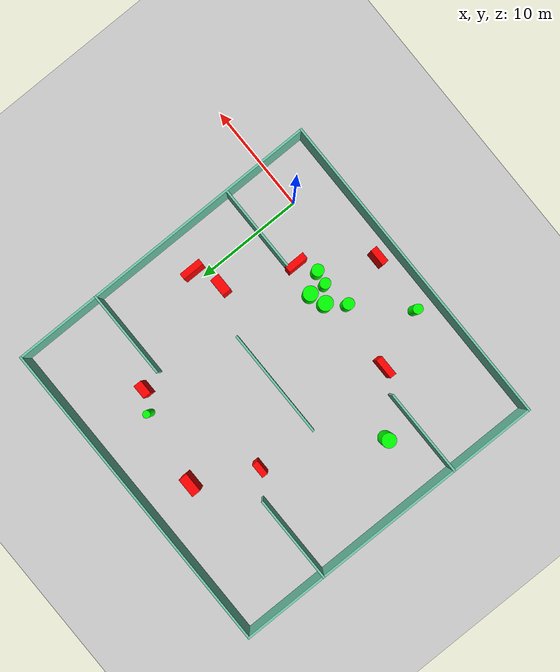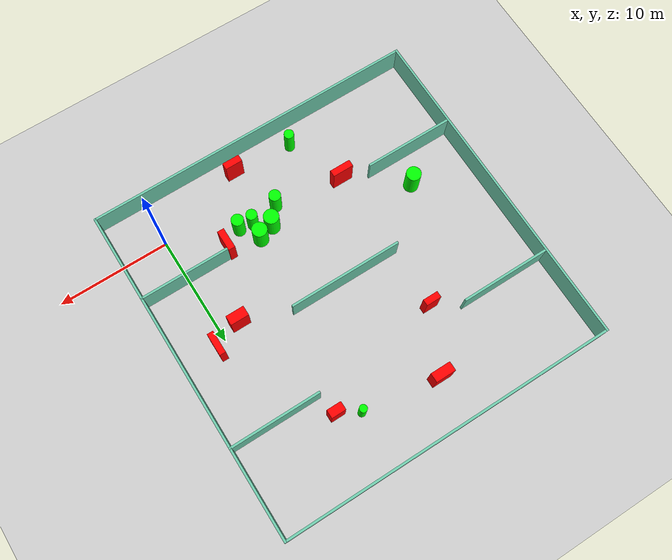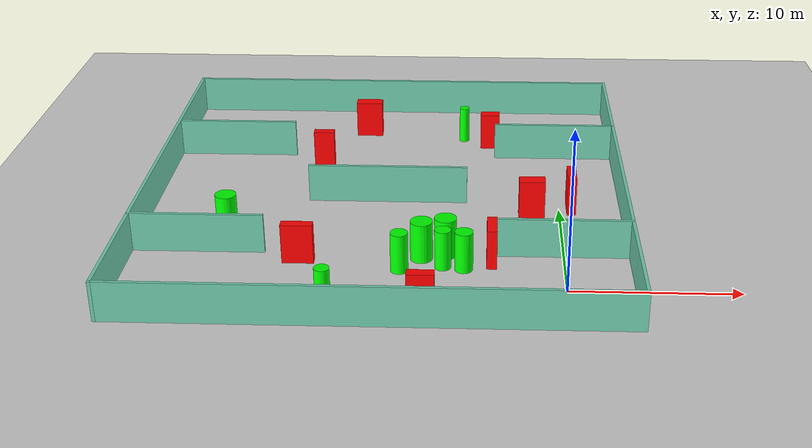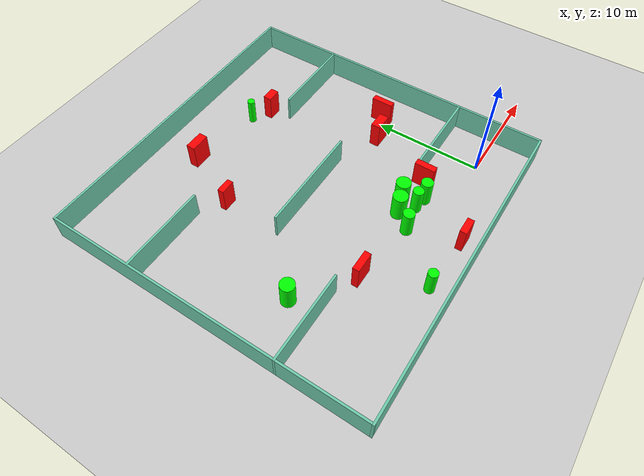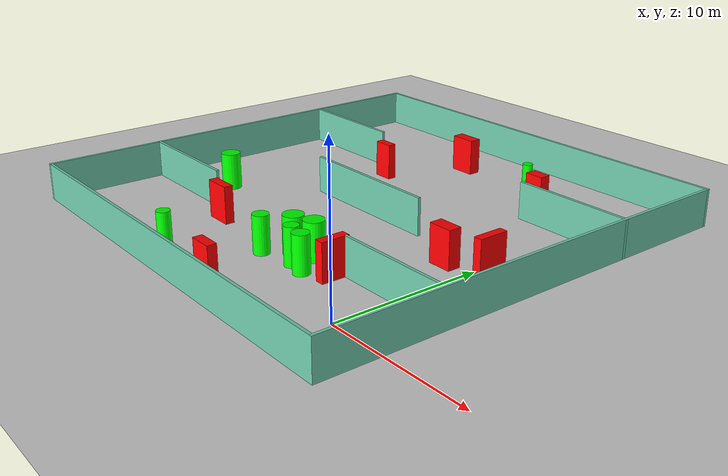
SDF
<sdf version="1.7">
 <world name="default">
  <light name="sun" type="directional">
   <pose>0 0 10 0 -0 0</pose>
   <diffuse>0.8 0.8 0.8 1</diffuse>
   <specular>0.2 0.2 0.2 1</specular>
   <attenuation>
    <range>1000</range>
    <constant>0.9</constant>
    <linear>0.01</linear>
    <quadratic>0.001</quadratic>
   </attenuation>
   <direction>-0.5 0.1 -0.9</direction>
   <spot><inner_angle>0</inner_angle><outer_angle>0</outer_angle><falloff>0</falloff></spot>
  </light>
  <model name="ground_plane">
   <static>1</static>
   <link name="link">
    <collision name="collision">
     <geometry><plane><normal>0 0 1</normal><size>100 100</size></plane></geometry>
     <surface>
      <contact><collide_bitmask>65535</collide_bitmask></contact>
      <friction><ode><mu>100</mu><mu2>50</mu2></ode></friction>
     </surface>
    </collision>
    <visual name="visual">
     <cast_shadows>0</cast_shadows>
     <geometry><plane><normal>0 0 1</normal><size>100 100</size></plane></geometry>
     <material>
      <script><uri>file://media/materials/scripts/gazebo.material</uri><name>Gazebo/Grey</name></script>
     </material>
    </visual>
   </link>
  </model>
  <gravity>0 0 -9.8</gravity>
  <magnetic_field>6e-06 2.3e-05 -4.2e-05</magnetic_field>
  <atmosphere type="adiabatic"/>
  <physics type="ode">
   <max_step_size>0.001</max_step_size>
   <real_time_factor>1</real_time_factor>
   <real_time_update_rate>1000</real_time_update_rate>
  </physics>
  <scene><ambient>0.4 0.4 0.4 1</ambient><background>0.7 0.7 0.7 1</background><shadows>1</shadows></scene>
  <spherical_coordinates>
   <surface_model>EARTH_WGS84</surface_model>
   <latitude_deg>0</latitude_deg>
   <longitude_deg>0</longitude_deg>
   <elevation>0</elevation>
   <heading_deg>0</heading_deg>
  </spherical_coordinates>
  <model name="my_base_walls">
   <link name="Wall_10">
    <collision name="Wall_10_Collision">
     <geometry><box><size>8.2 0.2 2.5</size></box></geometry>
     <pose>0 0 1.25 0 -0 0</pose>
    </collision>
    <visual name="Wall_10_Visual">
     <pose>0 0 1.25 0 -0 0</pose>
     <geometry><box><size>8.2 0.2 2.5</size></box></geometry>
     <material>
      <script><uri>file://media/materials/scripts/gazebo.material</uri><name>Gazebo/Grey</name></script>
      <ambient>0.435294 0.796078 0.67451 1</ambient>
     </material>
     <meta><layer>0</layer></meta>
    </visual>
    <pose>-11 -7 0 0 -0 0</pose>
   </link>
   <link name="Wall_12">
    <collision name="Wall_12_Collision">
     <geometry><box><size>8.2 0.2 2.5</size></box></geometry>
     <pose>0 0 1.25 0 -0 0</pose>
    </collision>
    <visual name="Wall_12_Visual">
     <pose>0 0 1.25 0 -0 0</pose>
     <geometry><box><size>8.2 0.2 2.5</size></box></geometry>
     <material>
      <script><uri>file://media/materials/scripts/gazebo.material</uri><name>Gazebo/Grey</name></script>
      <ambient>0.435294 0.796078 0.67451 1</ambient>
     </material>
     <meta><layer>0</layer></meta>
    </visual>
    <pose>-11 7 0 0 -0 0</pose>
   </link>
   <link name="Wall_14">
    <collision name="Wall_14_Collision">
     <geometry><box><size>8.2 0.2 2.5</size></box></geometry>
     <pose>0 0 1.25 0 -0 0</pose>
    </collision>
    <visual name="Wall_14_Visual">
     <pose>0 0 1.25 0 -0 0</pose>
     <geometry><box><size>8.2 0.2 2.5</size></box></geometry>
     <material>
      <script><uri>file://media/materials/scripts/gazebo.material</uri><name>Gazebo/Grey</name></script>
      <ambient>0.435294 0.796078 0.67451 1</ambient>
     </material>
     <meta><layer>0</layer></meta>
    </visual>
    <pose>11 7 0 0 -0 3.14159</pose>
   </link>
   <link name="Wall_16">
    <collision name="Wall_16_Collision">
     <geometry><box><size>10.2 0.2 2.5</size></box></geometry>
     <pose>0 0 1.25 0 -0 0</pose>
    </collision>
    <visual name="Wall_16_Visual">
     <pose>0 0 1.25 0 -0 0</pose>
     <geometry><box><size>10.2 0.2 2.5</size></box></geometry>
     <material>
      <script><uri>file://media/materials/scripts/gazebo.material</uri><name>Gazebo/Grey</name></script>
      <ambient>0.435294 0.796078 0.67451 1</ambient>
     </material>
     <meta><layer>0</layer></meta>
    </visual>
    <pose>0 0 0 0 -0 3.14159</pose>
   </link>
   <link name="Wall_2">
    <collision name="Wall_2_Collision">
     <geometry><box><size>30.2 0.2 2.5</size></box></geometry>
     <pose>0 0 1.25 0 -0 0</pose>
    </collision>
    <visual name="Wall_2_Visual">
     <pose>0 0 1.25 0 -0 0</pose>
     <geometry><box><size>30.2 0.2 2.5</size></box></geometry>
     <material>
      <script><uri>file://media/materials/scripts/gazebo.material</uri><name>Gazebo/Grey</name></script>
      <ambient>0.435294 0.796078 0.67451 1</ambient>
     </material>
     <meta><layer>0</layer></meta>
    </visual>
    <pose>0 -15 0 0 -0 3.14159</pose>
   </link>
   <link name="Wall_3">
    <collision name="Wall_3_Collision">
     <geometry><box><size>30.2 0.2 2.5</size></box></geometry>
     <pose>0 0 1.25 0 -0 0</pose>
    </collision>
    <visual name="Wall_3_Visual">
     <pose>0 0 1.25 0 -0 0</pose>
     <geometry><box><size>30.2 0.2 2.5</size></box></geometry>
     <material>
      <script><uri>file://media/materials/scripts/gazebo.material</uri><name>Gazebo/Grey</name></script>
      <ambient>0.435294 0.796078 0.67451 1</ambient>
     </material>
     <meta><layer>0</layer></meta>
    </visual>
    <pose>-15 0 0 0 -0 1.5708</pose>
   </link>
   <link name="Wall_4">
    <collision name="Wall_4_Collision">
     <geometry><box><size>30.2 0.2 2.5</size></box></geometry>
     <pose>0 0 1.25 0 -0 0</pose>
    </collision>
    <visual name="Wall_4_Visual">
     <pose>0 0 1.25 0 -0 0</pose>
     <geometry><box><size>30.2 0.2 2.5</size></box></geometry>
     <material>
      <script><uri>file://media/materials/scripts/gazebo.material</uri><name>Gazebo/Grey</name></script>
      <ambient>0.435294 0.796078 0.67451 1</ambient>
     </material>
     <meta><layer>0</layer></meta>
    </visual>
    <pose>0 15 0 0 -0 0</pose>
   </link>
   <link name="Wall_6">
    <collision name="Wall_6_Collision">
     <geometry><box><size>30.2 0.2 2.5</size></box></geometry>
     <pose>0 0 1.25 0 -0 0</pose>
    </collision>
    <visual name="Wall_6_Visual">
     <pose>0 0 1.25 0 -0 0</pose>
     <geometry><box><size>30.2 0.2 2.5</size></box></geometry>
     <material>
      <script><uri>file://media/materials/scripts/gazebo.material</uri><name>Gazebo/Grey</name></script>
      <ambient>0.435294 0.796078 0.67451 1</ambient>
     </material>
     <meta><layer>0</layer></meta>
    </visual>
    <pose>15 0 0 0 -0 1.5708</pose>
   </link>
   <link name="Wall_8">
    <collision name="Wall_8_Collision">
     <geometry><box><size>8.2 0.2 2.5</size></box></geometry>
     <pose>0 0 1.25 0 -0 0</pose>
    </collision>
    <visual name="Wall_8_Visual">
     <pose>0 0 1.25 0 -0 0</pose>
     <geometry><box><size>8.2 0.2 2.5</size></box></geometry>
     <material>
      <script><uri>file://media/materials/scripts/gazebo.material</uri><name>Gazebo/Grey</name></script>
      <ambient>0.435294 0.796078 0.67451 1</ambient>
     </material>
     <meta><layer>0</layer></meta>
    </visual>
    <pose>11 -7 0 0 -0 3.14159</pose>
   </link>
   <static>1</static>
   <pose>-11 11 0 0 -0 0</pose>
  </model>
  <model name="cylinder1">
   <static>1</static>
   <link name="link">
    <inertial>
     <mass>1</mass>
     <inertia><ixx>0.5</ixx><ixy>0</ixy><ixz>0</ixz><iyy>0.5</iyy><iyz>0</iyz><izz>1</izz></inertia>
    </inertial>
    <collision name="collision">
     <geometry><cylinder><radius>0.6745671179222946</radius><length>2.5</length></cylinder></geometry>
    </collision>
    <visual name="visual">
     <geometry><cylinder><radius>0.6745671179222946</radius><length>2.5</length></cylinder></geometry>
     <material>
      <ambient>0 1 0 1</ambient>
      <diffuse>0 1 0 1</diffuse>
      <specular>0.1 0.1 0.1 1</specular>
      <emissive>0 0 0 0</emissive>
     </material>
    </visual>
   </link>
   <pose>-8.468699996051122 3.518961131097808 1.25 0 0 0</pose>
  </model>
  <model name="cylinder2">
   <static>1</static>
   <link name="link">
    <inertial>
     <mass>1</mass>
     <inertia><ixx>0.5</ixx><ixy>0</ixy><ixz>0</ixz><iyy>0.5</iyy><iyz>0</iyz><izz>1</izz></inertia>
    </inertial>
    <collision name="collision">
     <geometry><cylinder><radius>0.5409762437534952</radius><length>2.5</length></cylinder></geometry>
    </collision>
    <visual name="visual">
     <geometry><cylinder><radius>0.5409762437534952</radius><length>2.5</length></cylinder></geometry>
     <material>
      <ambient>0 1 0 1</ambient>
      <diffuse>0 1 0 1</diffuse>
      <specular>0.1 0.1 0.1 1</specular>
      <emissive>0 0 0 0</emissive>
     </material>
    </visual>
   </link>
   <pose>-5.933419718311885 2.290746992038674 1.25 0 0 0</pose>
  </model>
  <model name="cylinder3">
   <static>1</static>
   <link name="link">
    <inertial>
     <mass>1</mass>
     <inertia><ixx>0.5</ixx><ixy>0</ixy><ixz>0</ixz><iyy>0.5</iyy><iyz>0</iyz><izz>1</izz></inertia>
    </inertial>
    <collision name="collision">
     <geometry><cylinder><radius>0.6666132835956652</radius><length>2.5</length></cylinder></geometry>
    </collision>
    <visual name="visual">
     <geometry><cylinder><radius>0.6666132835956652</radius><length>2.5</length></cylinder></geometry>
     <material>
      <ambient>0 1 0 1</ambient>
      <diffuse>0 1 0 1</diffuse>
      <specular>0.1 0.1 0.1 1</specular>
      <emissive>0 0 0 0</emissive>
     </material>
    </visual>
   </link>
   <pose>-7.054886464804081 3.983050001455884 1.25 0 0 0</pose>
  </model>
  <model name="cylinder4">
   <static>1</static>
   <link name="link">
    <inertial>
     <mass>1</mass>
     <inertia><ixx>0.5</ixx><ixy>0</ixy><ixz>0</ixz><iyy>0.5</iyy><iyz>0</iyz><izz>1</izz></inertia>
    </inertial>
    <collision name="collision">
     <geometry><cylinder><radius>0.3361216957949197</radius><length>2.5</length></cylinder></geometry>
    </collision>
    <visual name="visual">
     <geometry><cylinder><radius>0.3361216957949197</radius><length>2.5</length></cylinder></geometry>
     <material>
      <ambient>0 1 0 1</ambient>
      <diffuse>0 1 0 1</diffuse>
      <specular>0.1 0.1 0.1 1</specular>
      <emissive>0 0 0 0</emissive>
     </material>
    </visual>
   </link>
   <pose>-6.233314106403004 20.880691794648676 1.25 0 0 0</pose>
  </model>
  <model name="cylinder5">
   <static>1</static>
   <link name="link">
    <inertial>
     <mass>1</mass>
     <inertia><ixx>0.5</ixx><ixy>0</ixy><ixz>0</ixz><iyy>0.5</iyy><iyz>0</iyz><izz>1</izz></inertia>
    </inertial>
    <collision name="collision">
     <geometry><cylinder><radius>0.6512731866849204</radius><length>2.5</length></cylinder></geometry>
    </collision>
    <visual name="visual">
     <geometry><cylinder><radius>0.6512731866849204</radius><length>2.5</length></cylinder></geometry>
     <material>
      <ambient>0 1 0 1</ambient>
      <diffuse>0 1 0 1</diffuse>
      <specular>0.1 0.1 0.1 1</specular>
      <emissive>0 0 0 0</emissive>
     </material>
    </visual>
   </link>
   <pose>-20.6383135222705 6.625581700250722 1.25 0 0 0</pose>
  </model>
  <model name="cylinder6">
   <static>1</static>
   <link name="link">
    <inertial>
     <mass>1</mass>
     <inertia><ixx>0.5</ixx><ixy>0</ixy><ixz>0</ixz><iyy>0.5</iyy><iyz>0</iyz><izz>1</izz></inertia>
    </inertial>
    <collision name="collision">
     <geometry><cylinder><radius>0.4410637959642375</radius><length>2.5</length></cylinder></geometry>
    </collision>
    <visual name="visual">
     <geometry><cylinder><radius>0.4410637959642375</radius><length>2.5</length></cylinder></geometry>
     <material>
      <ambient>0 1 0 1</ambient>
      <diffuse>0 1 0 1</diffuse>
      <specular>0.1 0.1 0.1 1</specular>
      <emissive>0 0 0 0</emissive>
     </material>
    </visual>
   </link>
   <pose>-13.677090343277683 -2.130906186094571 1.25 0 0 0</pose>
  </model>
  <model name="cylinder7">
   <static>1</static>
   <link name="link">
    <inertial>
     <mass>1</mass>
     <inertia><ixx>0.5</ixx><ixy>0</ixy><ixz>0</ixz><iyy>0.5</iyy><iyz>0</iyz><izz>1</izz></inertia>
    </inertial>
    <collision name="collision">
     <geometry><cylinder><radius>0.4885006598827717</radius><length>2.5</length></cylinder></geometry>
    </collision>
    <visual name="visual">
     <geometry><cylinder><radius>0.4885006598827717</radius><length>2.5</length></cylinder></geometry>
     <material>
      <ambient>0 1 0 1</ambient>
      <diffuse>0 1 0 1</diffuse>
      <specular>0.1 0.1 0.1 1</specular>
      <emissive>0 0 0 0</emissive>
     </material>
    </visual>
   </link>
   <pose>-7.172901863312465 2.5000645181983447 1.25 0 0 0</pose>
  </model>
  <model name="cylinder8">
   <static>1</static>
   <link name="link">
    <inertial>
     <mass>1</mass>
     <inertia><ixx>0.5</ixx><ixy>0</ixy><ixz>0</ixz><iyy>0.5</iyy><iyz>0</iyz><izz>1</izz></inertia>
    </inertial>
    <collision name="collision">
     <geometry><cylinder><radius>0.5250504134191113</radius><length>2.5</length></cylinder></geometry>
    </collision>
    <visual name="visual">
     <geometry><cylinder><radius>0.5250504134191113</radius><length>2.5</length></cylinder></geometry>
     <material>
      <ambient>0 1 0 1</ambient>
      <diffuse>0 1 0 1</diffuse>
      <specular>0.1 0.1 0.1 1</specular>
      <emissive>0 0 0 0</emissive>
     </material>
    </visual>
   </link>
   <pose>-9.700551472684523 2.0615843551531485 1.25 0 0 0</pose>
  </model>
  <model name="box1">
   <static>1</static>
   <link name="link">
    <inertial>
     <mass>1</mass>
     <inertia><ixx>0.083</ixx><ixy>0</ixy><ixz>0</ixz><iyy>0.083</iyy><iyz>0</iyz><izz>0.083</izz></inertia>
    </inertial>
    <collision name="collision">
     <geometry><box><size>1.3599974113767967 0.5696418746348134 2.5</size></box></geometry>
    </collision>
    <visual name="visual">
     <geometry><box><size>1.3599974113767967 0.5696418746348134 2.5</size></box></geometry>
     <material>
      <ambient>1 0 0 1</ambient>
      <diffuse>1 0 0 1</diffuse>
      <specular>0.1 0.1 0.1 1</specular>
      <emissive>0 0 0 0</emissive>
     </material>
    </visual>
    <sensor name="my_contact" type="contact">
     <contact><collision>box_collision</collision><topic>__default_topic__</topic></contact>
    </sensor>
   </link>
   <pose>-15.728094112937486 16.45694586163403 1.25 0 0 0</pose>
  </model>
  <model name="box2">
   <static>1</static>
   <link name="link">
    <inertial>
     <mass>1</mass>
     <inertia><ixx>0.083</ixx><ixy>0</ixy><ixz>0</ixz><iyy>0.083</iyy><iyz>0</iyz><izz>0.083</izz></inertia>
    </inertial>
    <collision name="collision">
     <geometry><box><size>1.3004339339516382 0.7618879744116205 2.5</size></box></geometry>
    </collision>
    <visual name="visual">
     <geometry><box><size>1.3004339339516382 0.7618879744116205 2.5</size></box></geometry>
     <material>
      <ambient>1 0 0 1</ambient>
      <diffuse>1 0 0 1</diffuse>
      <specular>0.1 0.1 0.1 1</specular>
      <emissive>0 0 0 0</emissive>
     </material>
    </visual>
    <sensor name="my_contact" type="contact">
     <contact><collision>box_collision</collision><topic>__default_topic__</topic></contact>
    </sensor>
   </link>
   <pose>-4.414156481341923 19.858129766851572 1.25 0 0 0</pose>
  </model>
  <model name="box3">
   <static>1</static>
   <link name="link">
    <inertial>
     <mass>1</mass>
     <inertia><ixx>0.083</ixx><ixy>0</ixy><ixz>0</ixz><iyy>0.083</iyy><iyz>0</iyz><izz>0.083</izz></inertia>
    </inertial>
    <collision name="collision">
     <geometry><box><size>1.6353711698287694 0.8716625360181731 2.5</size></box></geometry>
    </collision>
    <visual name="visual">
     <geometry><box><size>1.6353711698287694 0.8716625360181731 2.5</size></box></geometry>
     <material>
      <ambient>1 0 0 1</ambient>
      <diffuse>1 0 0 1</diffuse>
      <specular>0.1 0.1 0.1 1</specular>
      <emissive>0 0 0 0</emissive>
     </material>
    </visual>
    <sensor name="my_contact" type="contact">
     <contact><collision>box_collision</collision><topic>__default_topic__</topic></contact>
    </sensor>
   </link>
   <pose>-1.7717557156766084 9.32514709391298 1.25 0 0 0</pose>
  </model>
  <model name="box4">
   <static>1</static>
   <link name="link">
    <inertial>
     <mass>1</mass>
     <inertia><ixx>0.083</ixx><ixy>0</ixy><ixz>0</ixz><iyy>0.083</iyy><iyz>0</iyz><izz>0.083</izz></inertia>
    </inertial>
    <collision name="collision">
     <geometry><box><size>1.5695837455144137 0.618705031370502 2.5</size></box></geometry>
    </collision>
    <visual name="visual">
     <geometry><box><size>1.5695837455144137 0.618705031370502 2.5</size></box></geometry>
     <material>
      <ambient>1 0 0 1</ambient>
      <diffuse>1 0 0 1</diffuse>
      <specular>0.1 0.1 0.1 1</specular>
      <emissive>0 0 0 0</emissive>
     </material>
    </visual>
    <sensor name="my_contact" type="contact">
     <contact><collision>box_collision</collision><topic>__default_topic__</topic></contact>
    </sensor>
   </link>
   <pose>-8.237599265007047 -2.4397017345075334 1.25 0 0 0</pose>
  </model>
  <model name="box5">
   <static>1</static>
   <link name="link">
    <inertial>
     <mass>1</mass>
     <inertia><ixx>0.083</ixx><ixy>0</ixy><ixz>0</ixz><iyy>0.083</iyy><iyz>0</iyz><izz>0.083</izz></inertia>
    </inertial>
    <collision name="collision">
     <geometry><box><size>1.807076705754606 0.8276935051170078 2.5</size></box></geometry>
    </collision>
    <visual name="visual">
     <geometry><box><size>1.807076705754606 0.8276935051170078 2.5</size></box></geometry>
     <material>
      <ambient>1 0 0 1</ambient>
      <diffuse>1 0 0 1</diffuse>
      <specular>0.1 0.1 0.1 1</specular>
      <emissive>0 0 0 0</emissive>
     </material>
    </visual>
    <sensor name="my_contact" type="contact">
     <contact><collision>box_collision</collision><topic>__default_topic__</topic></contact>
    </sensor>
   </link>
   <pose>-13.067899856798892 21.831168451192813 1.25 0 0 0</pose>
  </model>
  <model name="box6">
   <static>1</static>
   <link name="link">
    <inertial>
     <mass>1</mass>
     <inertia><ixx>0.083</ixx><ixy>0</ixy><ixz>0</ixz><iyy>0.083</iyy><iyz>0</iyz><izz>0.083</izz></inertia>
    </inertial>
    <collision name="collision">
     <geometry><box><size>0.5575014424923237 2.0167075376007806 2.5</size></box></geometry>
    </collision>
    <visual name="visual">
     <geometry><box><size>0.5575014424923237 2.0167075376007806 2.5</size></box></geometry>
     <material>
      <ambient>1 0 0 1</ambient>
      <diffuse>1 0 0 1</diffuse>
      <specular>0.1 0.1 0.1 1</specular>
      <emissive>0 0 0 0</emissive>
     </material>
    </visual>
    <sensor name="my_contact" type="contact">
     <contact><collision>box_collision</collision><topic>__default_topic__</topic></contact>
    </sensor>
   </link>
   <pose>0.7630928040874494 10.375475521801008 1.25 0 0 0</pose>
  </model>
  <model name="box7">
   <static>1</static>
   <link name="link">
    <inertial>
     <mass>1</mass>
     <inertia><ixx>0.083</ixx><ixy>0</ixy><ixz>0</ixz><iyy>0.083</iyy><iyz>0</iyz><izz>0.083</izz></inertia>
    </inertial>
    <collision name="collision">
     <geometry><box><size>1.8934063940222259 0.6030755733220909 2.5</size></box></geometry>
    </collision>
    <visual name="visual">
     <geometry><box><size>1.8934063940222259 0.6030755733220909 2.5</size></box></geometry>
     <material>
      <ambient>1 0 0 1</ambient>
      <diffuse>1 0 0 1</diffuse>
      <specular>0.1 0.1 0.1 1</specular>
      <emissive>0 0 0 0</emissive>
     </material>
    </visual>
    <sensor name="my_contact" type="contact">
     <contact><collision>box_collision</collision><topic>__default_topic__</topic></contact>
    </sensor>
   </link>
   <pose>-15.762009323330494 2.96982417099147 1.25 0 0 0</pose>
  </model>
  <model name="box8">
   <static>1</static>
   <link name="link">
    <inertial>
     <mass>1</mass>
     <inertia><ixx>0.083</ixx><ixy>0</ixy><ixz>0</ixz><iyy>0.083</iyy><iyz>0</iyz><izz>0.083</izz></inertia>
    </inertial>
    <collision name="collision">
     <geometry><box><size>0.6090647340640432 1.8793398537381014 2.5</size></box></geometry>
    </collision>
    <visual name="visual">
     <geometry><box><size>0.6090647340640432 1.8793398537381014 2.5</size></box></geometry>
     <material>
      <ambient>1 0 0 1</ambient>
      <diffuse>1 0 0 1</diffuse>
      <specular>0.1 0.1 0.1 1</specular>
      <emissive>0 0 0 0</emissive>
     </material>
    </visual>
    <sensor name="my_contact" type="contact">
     <contact><collision>box_collision</collision><topic>__default_topic__</topic></contact>
    </sensor>
   </link>
   <pose>-4.298341739059904 3.269643920552582 1.25 0 0 0</pose>
  </model>
 </world>
</sdf>
